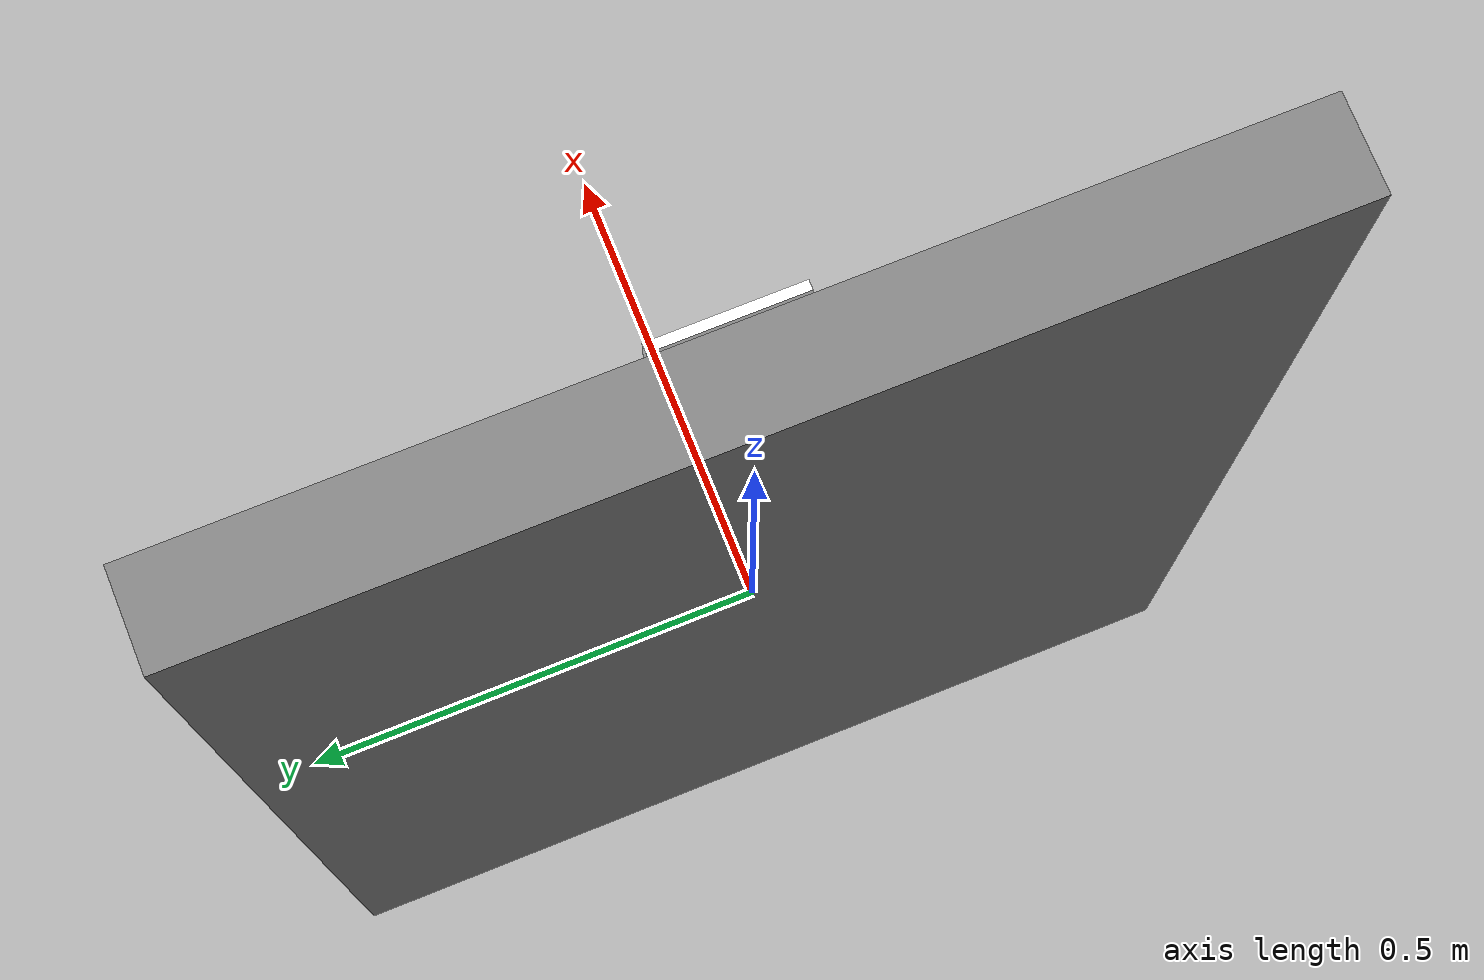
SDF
<?xml version="1.0" ?>
<sdf version="1.8">
  <model name="poster_board_4">
    <static>true</static>
    <link name="link">
      <!-- Frame (Large: 1.1 width x 1.6 height) -->
      <visual name="frame">
        <geometry><box><size>0.1 1.1 1.6</size></box></geometry>
        <material><ambient>0.5 0.5 0.5 1</ambient><diffuse>0.5 0.5 0.5 1</diffuse></material>
      </visual>

      <!-- Poster Content (1.0 x 1.5) -->
      <visual name="poster">
        <pose>0.06 0 -0.05 0 0 0</pose>
        <geometry><box><size>0.01 1.0 1.5</size></box></geometry>
        <material>
          <ambient>1 1 1 1</ambient><diffuse>1 1 1 1</diffuse>
          <pbr><metal><albedo_map>materials/textures/poster4.jpeg</albedo_map></metal></pbr>
        </material>
      </visual>

      <!-- ArUco Marker (Top Edge) -->
      <visual name="aruco_marker">
        <pose>0.065 0 0.7 0 0 0</pose>
        <geometry><box><size>0.01 0.15 0.15</size></box></geometry>
        <material>
          <ambient>1 1 1 1</ambient><diffuse>1 1 1 1</diffuse>
          <pbr><metal><albedo_map>materials/textures/aruco_marker.png</albedo_map></metal></pbr>
        </material>
      </visual>

       <collision name="collision">
         <geometry><box><size>0.1 1.1 1.6</size></box></geometry>
      </collision>
    </link>
  </model>
</sdf>
